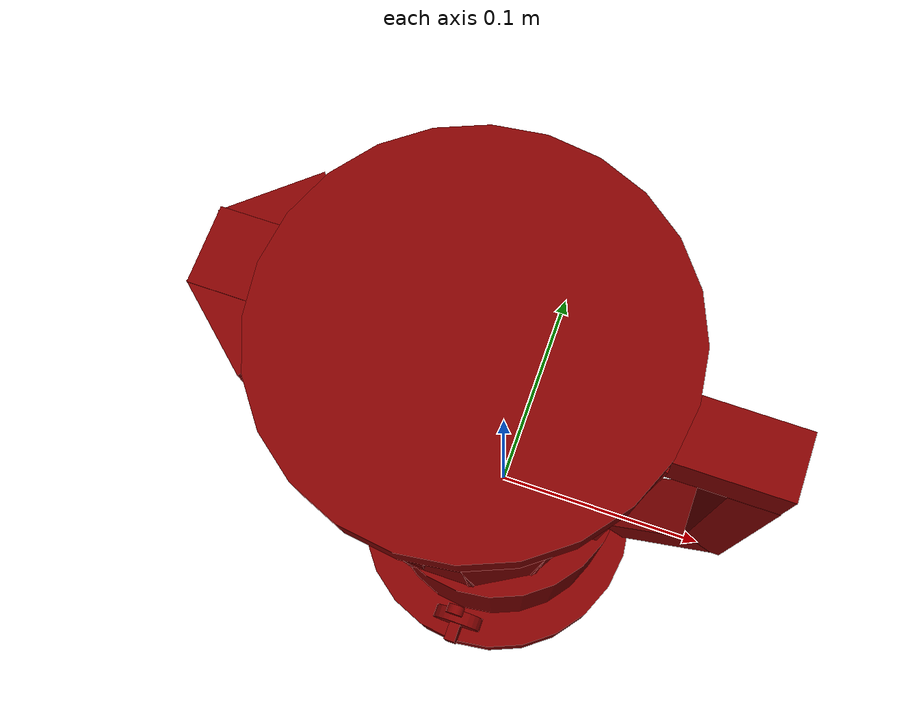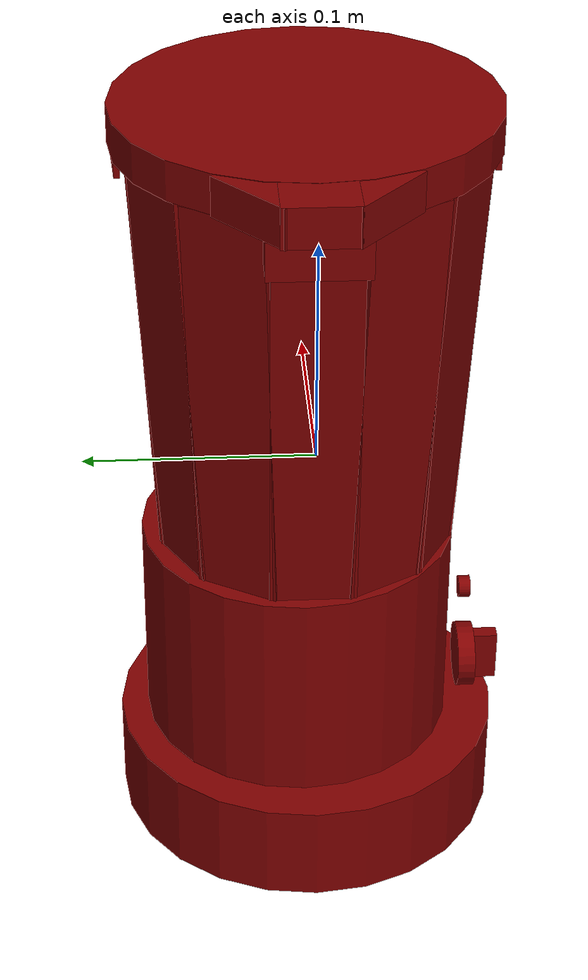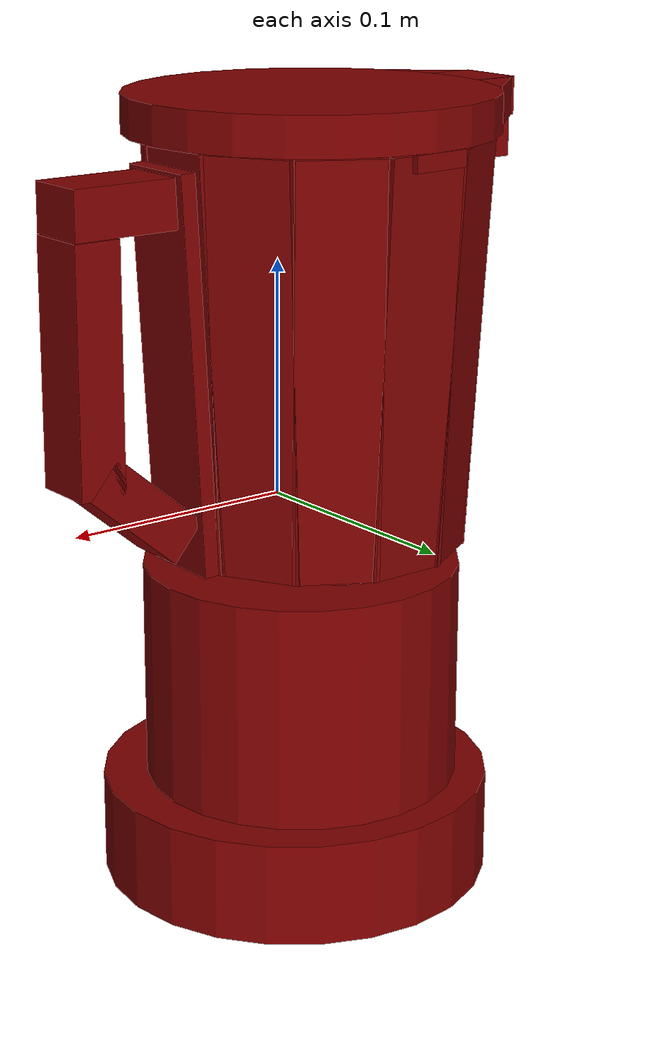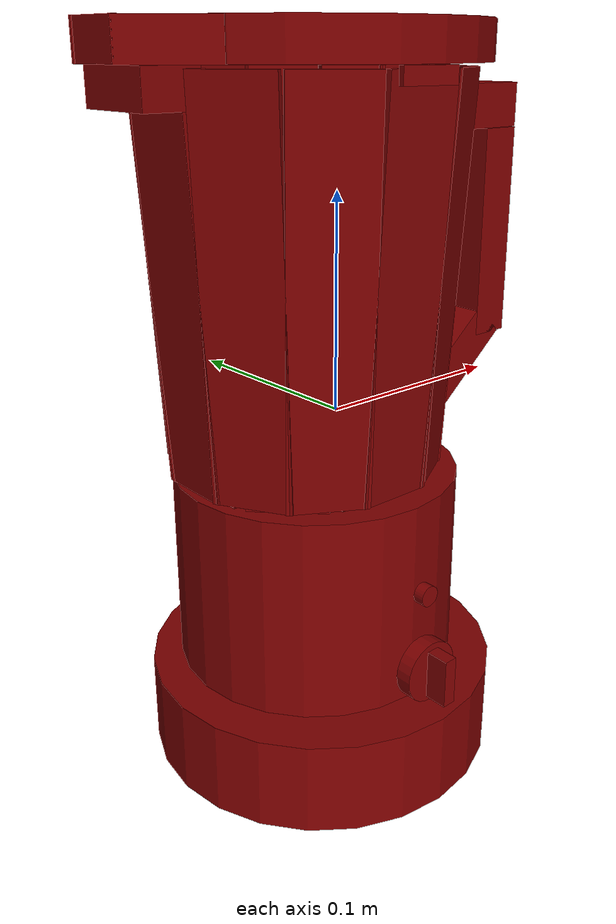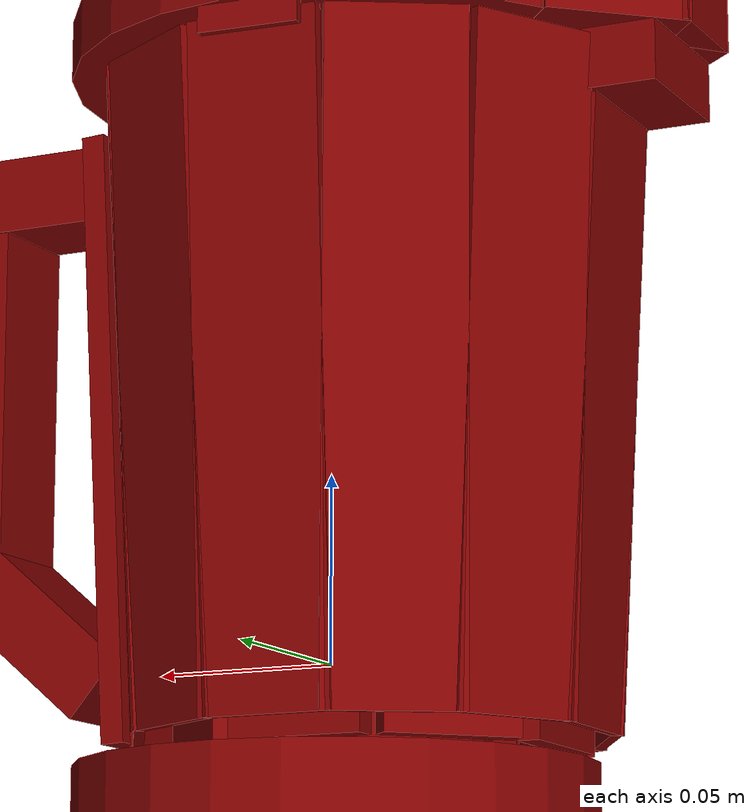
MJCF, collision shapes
<?xml version='1.0' encoding='UTF-8'?>
<mujoco model="model">
  <option timestep="0.002" gravity="0.0 0.0 -9.81"/>
  <compiler angle="radian"/>
  <asset>
    <mesh file="visuals/Blade001.obj" name="Blade001_vis"/>
    <mesh file="visuals/Body001.obj" name="Body001_vis"/>
    <mesh file="visuals/Button001.obj" name="Button001_vis"/>
    <mesh file="visuals/Handle001.obj" name="Handle001_vis"/>
    <mesh file="visuals/Jug001_Clear.obj" name="Jug001_Clear_vis"/>
    <mesh file="visuals/Knob001.obj" name="Knob001_vis"/>
    <mesh file="visuals/Lid001.obj" name="Lid001_vis"/>
    <texture file="visuals/T_BC001.png" name="Body001_material" type="2d"/>
    <material name="Body001_material" rgba="1 1 1 1.0" texture="Body001_material" shininess="0.1" specular="2"/>
    <texture file="visuals/T_BC001.png" name="Button001_material" type="2d"/>
    <material name="Button001_material" rgba="1 1 1 1.0" texture="Button001_material" shininess="0.4472135901451111" specular="0.3103448502657381"/>
    <texture file="visuals/T_BC001.png" name="Handle001_material" type="2d"/>
    <material name="Handle001_material" rgba="1 1 1 1.0" texture="Handle001_material" shininess="0.4472135901451111" specular="0.3103448502657381"/>
    <texture file="visuals/T_BC001.png" name="Blade001_material" type="2d"/>
    <material name="Blade001_material" rgba="1 1 1 1.0" texture="Blade001_material" shininess="0.4472135901451111" specular="0.3103448502657381"/>
    <texture file="visuals/T_BC001.png" name="Jug001_Clear_material" type="2d"/>
    <material name="Jug001_Clear_material" rgba="1 1 1 0.800000011920929" texture="Jug001_Clear_material" shininess="0.4472135901451111" specular="0.3103448502657381"/>
    <texture file="visuals/T_BC001.png" name="Lid001_material" type="2d"/>
    <material name="Lid001_material" rgba="1 1 1 1.0" texture="Lid001_material" shininess="0.4472135901451111" specular="0.3103448502657381"/>
    <texture file="visuals/T_BC001.png" name="Knob001_material" type="2d"/>
    <material name="Knob001_material" rgba="1 1 1 1.0" texture="Knob001_material" shininess="0.4472135901451111" specular="0.3103448502657381"/>
  </asset>
  <default>
    <default class="visual">
      <geom conaffinity="0" contype="0" group="1" type="mesh"/>
    </default>
    <default class="collision">
      <geom group="0" rgba="0.5 0 0 0.5"/>
    </default>
    <default class="spawn">
      <geom group="0" rgba="1 1 1 0.5" contype="0" conaffinity="0"/>
      <site group="0" rgba="1 1 1 0.5"/>
    </default>
    <default class="region">
      <geom group="1" conaffinity="0" contype="0" rgba="0 1 0 0"/>
    </default>
  </default>
  <worldbody>
    <body>
      <body name="object">
        <geom mesh="Body001_vis" type="mesh" solimp="0.998 0.998 0.001" solref="0.001 1" friction="0.95 0.3 0.1" class="visual" material="Body001_material"/>
        <geom class="collision" type="cylinder" pos="-0.00589545 0.00393850 -0.14606652" size="0.08354654908180237 0.02203417755663395" quat="1.0 0.0 0.0 0.0"/>
        <geom class="collision" type="cylinder" pos="-0.00589545 0.00832500 -0.07502760" size="0.06711135804653168 0.04750218614935875" quat="1.0 0.0 0.0 0.0"/>
        <geom class="collision" type="box" pos="-0.06489586 0.00609948 -0.00727709" size="0.0030985779594630003 0.017711566761136055 0.017908593639731407" quat="1.0 0.0 0.0 0.0"/>
        <geom class="collision" type="box" pos="0.02932438 0.00609948 -0.00727709" size="0.0030985779594630003 0.017711566761136055 0.017908580601215363" quat="1.0 0.0 0.0 0.0"/>
        <geom class="collision" type="box" pos="-0.01778574 -0.04101064 -0.00727709" size="0.017711568623781204 0.0030985793564468622 0.01790856570005417" quat="1.0 0.0 0.0 0.0"/>
        <geom class="collision" type="box" pos="-0.01778575 0.05320960 -0.00727709" size="0.017711568623781204 0.0030985793564468622 0.017908550798892975" quat="1.0 0.0 0.0 0.0"/>
        <geom class="collision" type="box" pos="0.01552614 0.03941137 -0.00727709" size="0.0030985777266323566 0.017711566761136055 0.01790849305689335" quat="0.38268354535102844 0.0 -0.0 -0.9238795042037964"/>
        <geom class="collision" type="box" pos="-0.05109762 -0.02721241 -0.00727709" size="0.0030985777266323566 0.017711566761136055 0.01790849305689335" quat="0.38268354535102844 0.0 -0.0 -0.9238795042037964"/>
        <geom class="collision" type="box" pos="0.01552614 -0.02721241 -0.00727709" size="0.0030985779594630003 0.017711566761136055 0.01790849305689335" quat="0.9238795042037964 0.0 -0.0 -0.3826834559440613"/>
        <geom class="collision" type="box" pos="-0.05109763 0.03941137 -0.00727709" size="0.0030985779594630003 0.017711566761136055 0.01790849305689335" quat="0.9238795042037964 0.0 -0.0 -0.3826834559440613"/>
        <body name="Button001">
          <joint axis="0.0 1.0 0.0" pos="-0.00590266 -0.06572178 -0.06649382" limited="true" name="Button001_joint" range="0.0 0.003" type="slide" damping="1" frictionloss="1" armature=".01" stiffness="0.05"/>
          <geom mesh="Button001_vis" type="mesh" solimp="0.998 0.998 0.001" solref="0.001 1" friction="0.95 0.3 0.1" class="visual" material="Button001_material"/>
          <geom class="collision" type="cylinder" pos="-0.00589458 -0.06567700 -0.06653088" size="0.00479704886674881 0.0025645531713962555" quat="0.7071068286895752 0.7071067690849304 0.0 0.0"/>
        </body>
        <body name="Handle001">
          <joint axis="0.0 0.0 1.0" pos="0.07332797 0.00640321 0.06573729" limited="true" name="Handle001_joint" range="0.0 0.2" type="slide" damping="1" frictionloss="1" armature=".01" stiffness="0.05"/>
          <geom mesh="Handle001_vis" type="mesh" solimp="0.998 0.998 0.001" solref="0.001 1" friction="0.95 0.3 0.1" class="visual" material="Handle001_material"/>
          <geom class="collision" type="box" pos="0.08418640 0.00630333 0.13202402" size="0.024435071274638176 0.013484399765729904 0.010110491886734962" quat="1.0 0.0 0.0 0.0"/>
          <geom class="collision" type="box" pos="0.09880317 0.00630333 0.07120916" size="0.010110338218510151 0.013484399765729904 0.0504155196249485" quat="1.0 0.0 0.0 0.0"/>
          <geom class="collision" type="box" pos="0.07894173 0.00630333 0.01163420" size="0.02543528564274311 0.013484399765729904 0.010110336355865002" quat="0.9384012818336487 0.0 -0.3455474078655243 0.0"/>
          <geom class="collision" type="box" pos="0.05565577 0.00609948 0.06190076" size="0.003270904766395688 0.017711566761136055 0.08210444450378418" quat="0.9996132850646973 0.0 0.027808554470539093 0.0"/>
          <body name="Blade001">
            <joint axis="0.0 0.0 1.0" pos="-0.01763882 0.00640323 0.06251763" limited="false" name="Blade001_joint" range="0 360" type="hinge" damping="1" frictionloss="1" armature=".01" stiffness="0.05"/>
            <geom mesh="Blade001_vis" type="mesh" solimp="0.998 0.998 0.001" solref="0.001 1" friction="0.95 0.3 0.1" class="visual" material="Blade001_material"/>
            <geom class="collision" type="cylinder" pos="-0.01759728 0.00651794 -0.00822668" size="0.0280256737023592 0.018888885155320168" quat="1.0 0.0 0.0 0.0"/>
            <geom class="collision" type="cylinder" pos="-0.01759728 0.00651794 0.03841868" size="0.02053365297615528 0.027440669015049934" quat="1.0 0.0 0.0 0.0"/>
            <geom class="collision" type="box" pos="-0.04218399 -0.01018318 0.02206498" size="0.006671010982245207 0.025818057358264923 0.000999993528239429" quat="1.0 0.0 0.0 0.0"/>
            <geom class="collision" type="box" pos="0.00668284 0.02300004 0.03221628" size="0.006671010982245207 0.025818057358264923 0.0009999941103160381" quat="1.0 0.0 0.0 0.0"/>
            <geom class="collision" type="box" pos="-0.00153811 -0.01841878 0.06132433" size="0.025818057358264923 0.006671012844890356 0.0009999946923926473" quat="1.0 0.0 0.0 0.0"/>
            <geom class="collision" type="box" pos="-0.03472133 0.03044805 0.05117302" size="0.025818057358264923 0.006671012844890356 0.0009999953908845782" quat="1.0 0.0 0.0 0.0"/>
          </body>
          <body name="Jug001_Clear">
            <geom class="region" name="reg_int" type="box" pos="-0.018073535 0.007001825 0.092699475" size="0.042696785 0.042696855000000006 0.025999975"/>
            <geom mesh="Jug001_Clear_vis" type="mesh" solimp="0.998 0.998 0.001" solref="0.001 1" friction="0.95 0.3 0.1" class="visual" material="Jug001_Clear_material"/>
            <geom class="collision" type="box" pos="0.04899446 0.00609948 0.06479517" size="0.0014110434567555785 0.017711566761136055 0.08591540902853012" quat="0.9996132850646973 0.0 0.027808554470539093 0.0"/>
            <geom class="collision" type="box" pos="-0.07943814 0.00609948 0.06479517" size="0.0014110434567555785 0.017711566761136055 0.08591540902853012" quat="0.9996132850646973 0.0 -0.02780856564640999 0.0"/>
            <geom class="collision" type="box" pos="-0.01522185 0.07031578 0.06479517" size="0.0014110434567555785 0.017711566761136055 0.08591540902853012" quat="0.7068333625793457 -0.019663644954562187 -0.019663646817207336 -0.7068333029747009"/>
            <geom class="collision" type="box" pos="-0.01522183 -0.05811682 0.06479517" size="0.0014110434567555785 0.017711566761136055 0.08591540902853012" quat="0.7068333625793457 0.01966363750398159 0.01966363750398159 -0.7068333029747009"/>
            <geom class="collision" type="box" pos="-0.04732998 -0.04951347 0.06479517" size="0.0014110434567555785 0.017711566761136055 0.08591540902853012" quat="0.49980661273002625 0.024082934483885765 0.013904287479817867 -0.8656904697418213"/>
            <geom class="collision" type="box" pos="0.01688630 0.06171243 0.06479517" size="0.0014110434567555785 0.017711566761136055 0.08591540902853012" quat="0.49980661273002625 -0.02408294379711151 -0.013904293067753315 -0.8656904697418213"/>
            <geom class="collision" type="box" pos="0.04039111 0.03820763 0.06479517" size="0.0014110434567555785 0.017711566761136055 0.08591540902853012" quat="0.25871896743774414 -0.026861032471060753 -0.007197392173111439 -0.9655522704124451"/>
            <geom class="collision" type="box" pos="-0.07083479 -0.02600867 0.06479517" size="0.0014110434567555785 0.017711566761136055 0.08591540902853012" quat="0.25871896743774414 0.026861021295189857 0.007197389379143715 -0.9655522704124451"/>
            <geom class="collision" type="box" pos="-0.07083479 0.03820764 0.06479517" size="0.0014110434567555785 0.017711566761136055 0.08591540157794952" quat="0.25871920585632324 -0.026860985904932022 0.007197387050837278 0.9655522108078003"/>
            <geom class="collision" type="box" pos="0.04039111 -0.02600867 0.06479517" size="0.0014110434567555785 0.017711566761136055 0.08591540902853012" quat="0.25871920585632324 0.026861025020480156 -0.007197396829724312 0.9655522108078003"/>
            <geom class="collision" type="box" pos="0.01688631 -0.04951347 0.06479517" size="0.0014110434567555785 0.017711566761136055 0.08591540902853012" quat="0.4998069107532501 0.024082956835627556 -0.01390430610626936 0.865690290927887"/>
            <geom class="collision" type="box" pos="-0.04732999 0.06171243 0.06479517" size="0.0014110434567555785 0.017711566761136055 0.08591540902853012" quat="0.4998069107532501 -0.02408294565975666 0.013904299587011337 0.865690290927887"/>
            <geom class="collision" type="box" pos="-0.08910745 0.00693062 0.14392556" size="0.012614632025361061 0.019579734653234482 0.007855560630559921" quat="1.0 0.0 0.0 0.0"/>
          </body>
          <body name="Lid001">
            <joint axis="0.0 0.0 1.0" pos="-0.02242874 0.00640323 0.14518732" limited="true" name="Lid001_joint" range="0.0 0.1" type="slide" damping="1" frictionloss="1" armature=".01" stiffness="0.05"/>
            <geom mesh="Lid001_vis" type="mesh" solimp="0.998 0.998 0.001" solref="0.001 1" friction="0.95 0.3 0.1" class="visual" material="Lid001_material"/>
            <geom class="collision" type="cylinder" pos="-0.01236127 0.00641139 0.16022266" size="0.07686559855937958 0.00810125283896923" quat="1.0 0.0 0.0 0.0"/>
            <geom class="collision" type="box" pos="-0.09610144 0.00693062 0.16018994" size="0.012614632025361061 0.014571985229849815 0.00804836768656969" quat="1.0 0.0 0.0 0.0"/>
            <geom class="collision" type="box" pos="-0.01778574 -0.05161486 0.13667220" size="0.012062345631420612 0.003668746445327997 0.015116953290998936" quat="1.0 0.0 0.0 0.0"/>
            <geom class="collision" type="box" pos="-0.01778574 0.06449971 0.13667220" size="0.012062350288033485 0.003668747842311859 0.015116958878934383" quat="1.0 0.0 0.0 0.0"/>
            <geom class="collision" type="box" pos="0.04027155 0.00644243 0.13667220" size="0.003668751334771514 0.01206235308200121 0.015116965398192406" quat="1.0 0.0 0.0 0.0"/>
            <geom class="collision" type="box" pos="-0.07584302 0.00644242 0.13667220" size="0.003668752498924732 0.012062358669936657 0.015116971917450428" quat="1.0 0.0 0.0 0.0"/>
            <geom class="collision" type="box" pos="-0.07104369 -0.01667121 0.13667220" size="0.012062367051839828 0.0036687529645860195 0.01511697843670845" quat="0.8360974192619324 0.0 -0.0 -0.5485810041427612"/>
            <geom class="collision" type="box" pos="0.03547221 0.02955606 0.13667220" size="0.012062367051839828 0.0036687529645860195 0.01511697843670845" quat="0.8360974192619324 0.0 -0.0 -0.5485810041427612"/>
            <geom class="collision" type="box" pos="-0.04089937 0.05970037 0.13667220" size="0.012062367051839828 0.0036687529645860195 0.01511697843670845" quat="0.9791154861450195 0.0 0.0 0.20330475270748138"/>
            <geom class="collision" type="box" pos="0.00532789 -0.04681552 0.13667220" size="0.012062367051839828 0.0036687529645860195 0.01511697843670845" quat="0.9791154861450195 0.0 0.0 0.20330475270748138"/>
            <geom class="collision" type="box" pos="0.02439526 -0.03345008 0.13667220" size="0.012062367051839828 0.0036687529645860195 0.01511697843670845" quat="0.9184560775756836 0.0 0.0 0.39552295207977295"/>
            <geom class="collision" type="box" pos="-0.05996674 0.04633492 0.13667220" size="0.012062367051839828 0.0036687529645860195 0.01511697843670845" quat="0.9184560775756836 0.0 0.0 0.39552295207977295"/>
            <geom class="collision" type="box" pos="0.02210676 0.04862343 0.13667220" size="0.012062367051839828 0.0036687529645860195 0.01511697843670845" quat="0.9291235208511353 0.0 -0.0 -0.36976948380470276"/>
            <geom class="collision" type="box" pos="-0.05767824 -0.03573858 0.13667220" size="0.012062367051839828 0.0036687529645860195 0.01511697843670845" quat="0.9291235208511353 0.0 -0.0 -0.36976948380470276"/>
            <geom class="collision" type="box" pos="-0.03764250 -0.04811358 0.13667220" size="0.012062367051839828 0.0036687529645860195 0.01511697843670845" quat="0.9848077297210693 0.0 -0.0 -0.17364826798439026"/>
            <geom class="collision" type="box" pos="0.00207103 0.06099843 0.13667220" size="0.012062367051839828 0.0036687529645860195 0.01511697843670845" quat="0.9848077297210693 0.0 -0.0 -0.17364826798439026"/>
            <geom class="collision" type="box" pos="-0.07234174 0.02629919 0.13667220" size="0.01206236518919468 0.0036687529645860195 0.01511697843670845" quat="0.8191519975662231 0.0 0.0 0.5735765099525452"/>
            <geom class="collision" type="box" pos="0.03677026 -0.01341435 0.13667220" size="0.01206236518919468 0.0036687529645860195 0.01511697843670845" quat="0.8191519975662231 0.0 0.0 0.5735765099525452"/>
            <geom class="collision" type="box" pos="-0.01723805 -0.06742044 0.14832833" size="0.013126359321177006 0.0012383818393573165 0.003460837062448263" quat="0.9991809725761414 0.0 -0.0 -0.04046505689620972"/>
            <geom class="collision" type="box" pos="-0.08644373 0.02292094 0.15999730" size="0.01261463388800621 0.019166914746165276 0.008048282004892826" quat="0.9105595946311951 0.0 -0.0 -0.4133777916431427"/>
            <geom class="collision" type="box" pos="-0.08637470 -0.01037555 0.15999730" size="0.01261463388800621 0.019166914746165276 0.008048282004892826" quat="0.9105597138404846 0.0 0.0 0.4133776128292084"/>
            <geom class="collision" type="box" pos="-0.01685392 0.08028323 0.14832833" size="0.013183570466935635 0.0012383820721879601 0.003460837062448263" quat="0.9993478655815125 0.0 0.0 0.0361081138253212"/>
          </body>
        </body>
        <body name="Knob001">
          <joint axis="0.0 1.0 0.0" pos="-0.00555410 -0.07280536 -0.10391000" limited="true" name="Knob001_joint" range="0.0 3.141592653589793" type="hinge" damping="0.05" armature="0.001"/>
          <geom mesh="Knob001_vis" type="mesh" solimp="0.998 0.998 0.001" solref="0.001 1" friction="0.95 0.3 0.1" class="visual" material="Knob001_material"/>
          <geom class="collision" type="cylinder" pos="-0.00568766 -0.06713738 -0.10368082" size="0.01438992377370596 0.0037583396770060062" quat="0.7071068286895752 0.7071067690849304 0.0 0.0"/>
          <geom class="collision" type="box" pos="-0.00556798 -0.07641022 -0.10375317" size="0.0031969596166163683 0.0053777205757796764 0.011407946236431599" quat="1.0 0.0 0.0 0.0"/>
        </body>
        <geom class="region" name="reg_main" type="box" pos="-0.01666377 0.006403230000000003 0.0" size="0.09317523 0.07634377 0.16918732"/>
      </body>
    </body>
  </worldbody>
  <actuator>
    <motor name="Button001_joint_actuator" joint="Button001_joint" gear="0.1"/>
    <motor name="Handle001_joint_actuator" joint="Handle001_joint" gear="100"/>
    <motor name="Knob001_joint_actuator" joint="Knob001_joint" gear="10"/>
    <motor name="Blade001_joint_actuator" joint="Blade001_joint" gear="10"/>
    <motor name="Lid001_joint_actuator" joint="Lid001_joint" gear="20"/>
  </actuator>
</mujoco>
